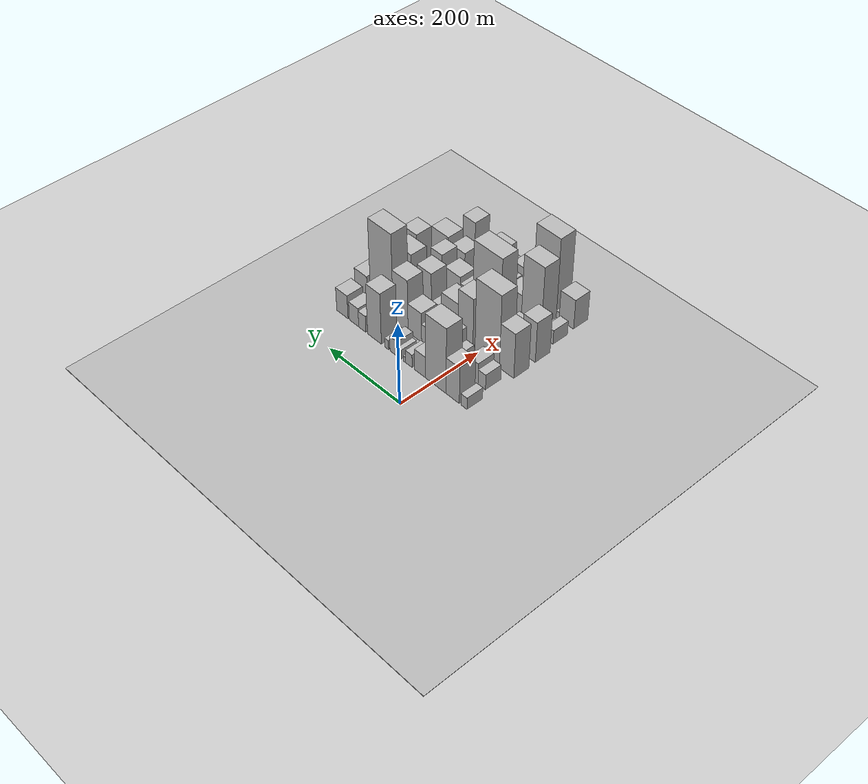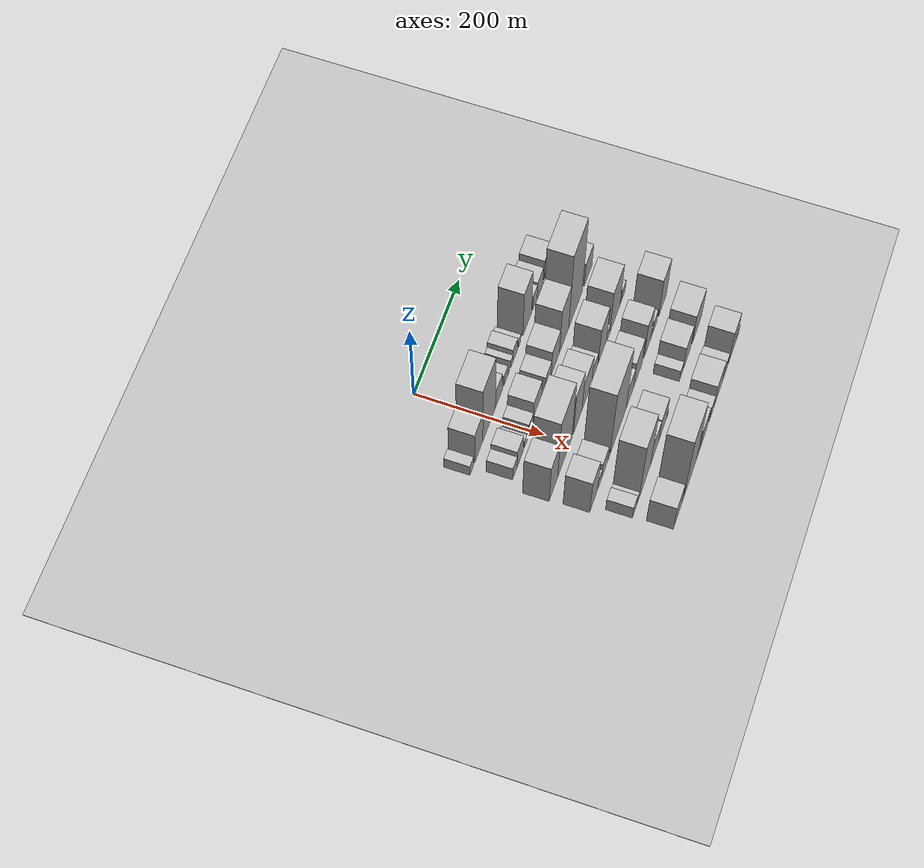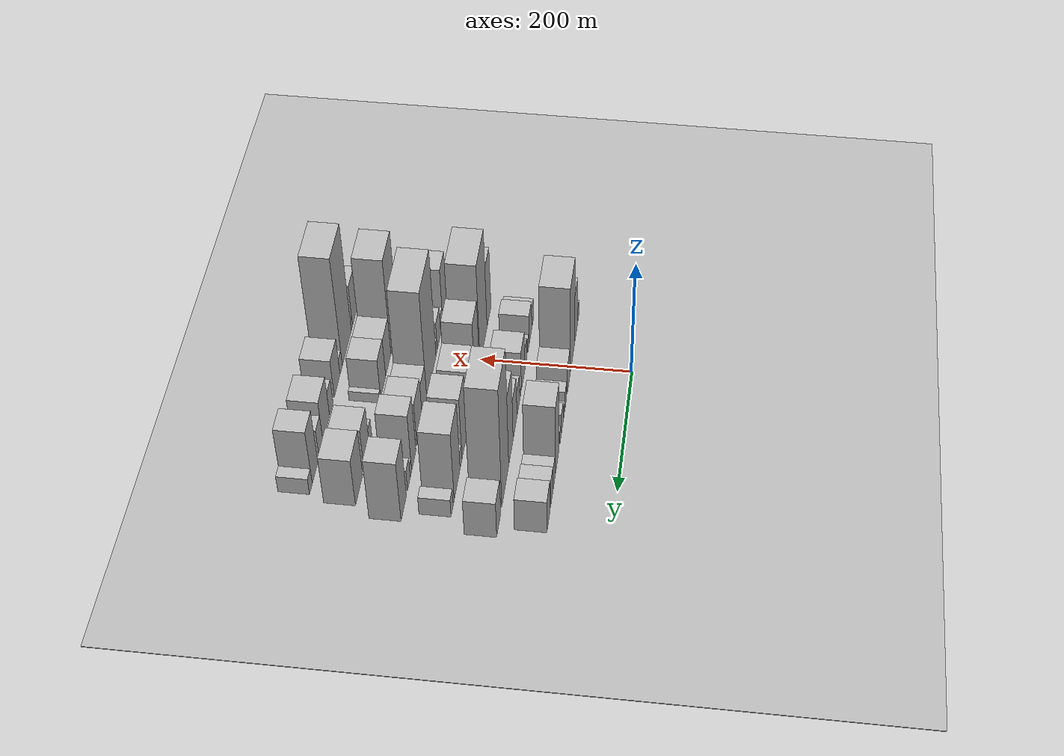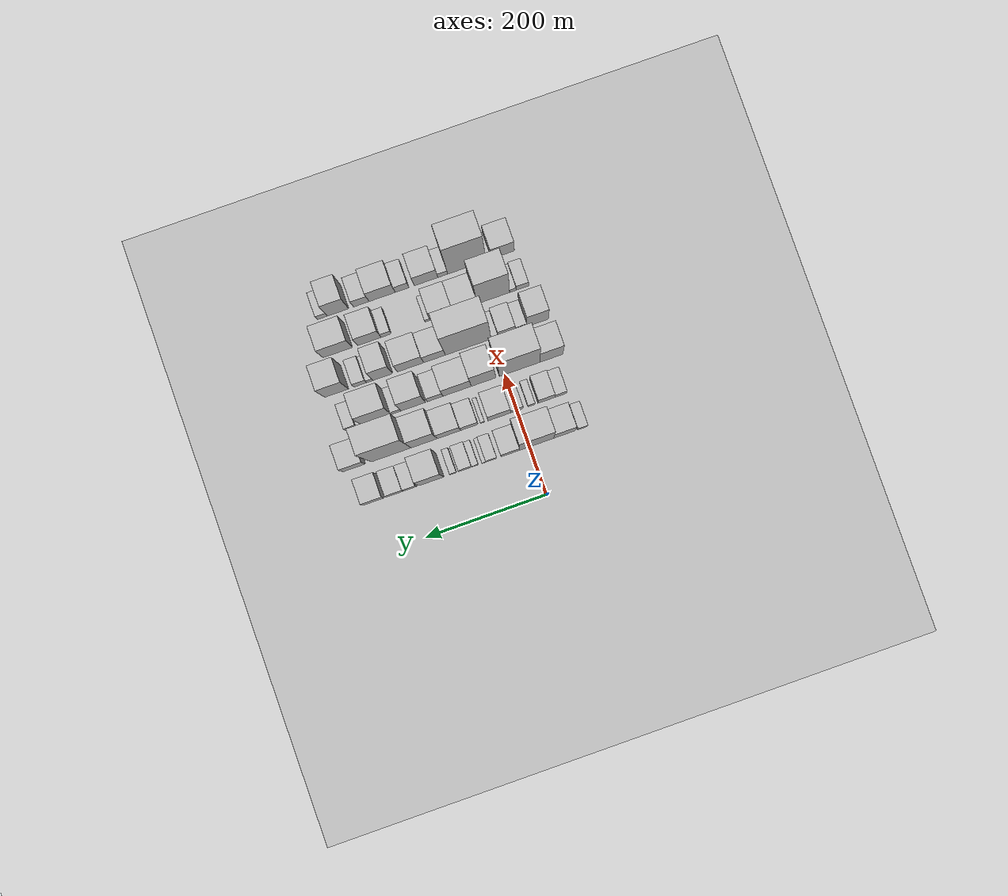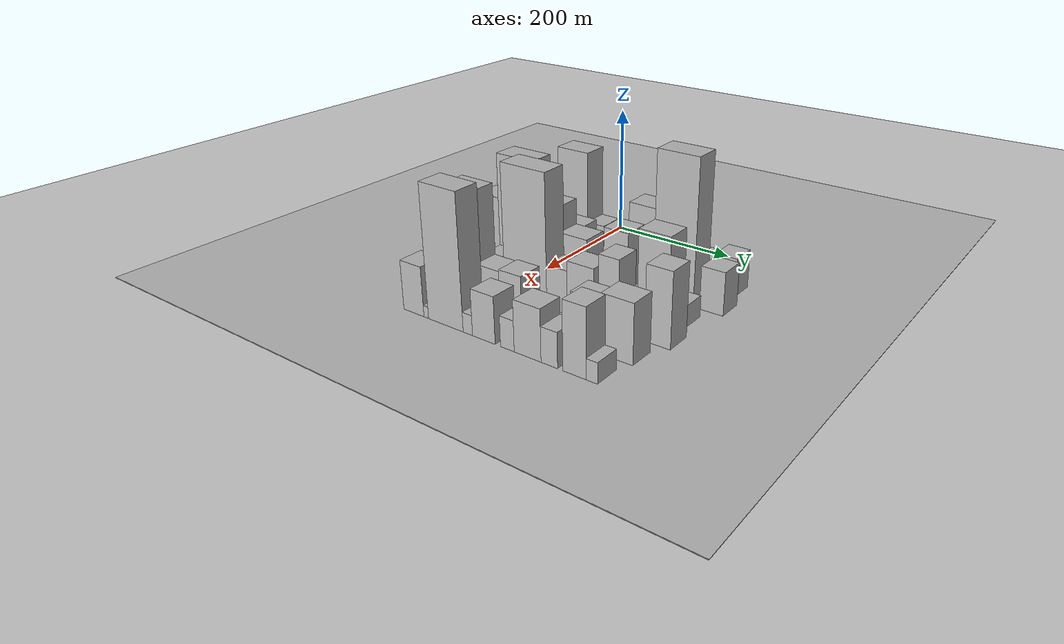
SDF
<sdf version="1.6">
 <world name="default">
  <include><name>ground_plane_1</name><uri>model://HANNAS_ground_plane</uri></include>
  <include>
   <name>ground_plane_2</name>
   <uri>model://HANNAS_ground_plane</uri>
   <pose>100 0 0  0 0 0</pose>
  </include>
  <model name="building_23">
   <static>1</static>
   <pose>100.0000 -86.9276 0 0.000000 0.000000 0.000000</pose>
   <link name="link">
    <pose>0 0 15.00 0 0 0</pose>
    <collision name="collision"><geometry><box><size>40.0000 16.5854 30.0000</size></box></geometry></collision>
    <visual name="visual">
     <cast_shadows>0</cast_shadows>
     <geometry><box><size>40.0000 16.5854 30.0000</size></box></geometry>
     <material>
      <script>
       <uri>model://HANNAS_wall/materials/scripts</uri>
       <uri>model://HANNAS_wall/materials/textures</uri>
       <name>vrc/HANNAS_wall</name>
      </script>
     </material>
    </visual>
   </link>
  </model>
  <model name="building_24">
   <static>1</static>
   <pose>100.0000 -56.8699 0 0.000000 0.000000 0.000000</pose>
   <link name="link">
    <pose>0 0 46.50 0 0 0</pose>
    <collision name="collision"><geometry><box><size>40.0000 35.5301 93.0000</size></box></geometry></collision>
    <visual name="visual">
     <cast_shadows>0</cast_shadows>
     <geometry><box><size>40.0000 35.5301 93.0000</size></box></geometry>
     <material>
      <script>
       <uri>model://HANNAS_wall/materials/scripts</uri>
       <uri>model://HANNAS_wall/materials/textures</uri>
       <name>vrc/HANNAS_wall</name>
      </script>
     </material>
    </visual>
   </link>
  </model>
  <model name="building_25">
   <static>1</static>
   <pose>100.0000 -10.9166 0 0.000000 0.000000 0.000000</pose>
   <link name="link">
    <pose>0 0 82.50 0 0 0</pose>
    <collision name="collision"><geometry><box><size>40.0000 56.3764 165.0000</size></box></geometry></collision>
    <visual name="visual">
     <cast_shadows>0</cast_shadows>
     <geometry><box><size>40.0000 56.3764 165.0000</size></box></geometry>
     <material>
      <script>
       <uri>model://HANNAS_wall/materials/scripts</uri>
       <uri>model://HANNAS_wall/materials/textures</uri>
       <name>vrc/HANNAS_wall</name>
      </script>
     </material>
    </visual>
   </link>
  </model>
  <model name="building_26">
   <static>1</static>
   <pose>100.0000 32.5966 0 0.000000 0.000000 0.000000</pose>
   <link name="link">
    <pose>0 0 27.00 0 0 0</pose>
    <collision name="collision"><geometry><box><size>40.0000 30.6500 54.0000</size></box></geometry></collision>
    <visual name="visual">
     <cast_shadows>0</cast_shadows>
     <geometry><box><size>40.0000 30.6500 54.0000</size></box></geometry>
     <material>
      <script>
       <uri>model://HANNAS_wall/materials/scripts</uri>
       <uri>model://HANNAS_wall/materials/textures</uri>
       <name>vrc/HANNAS_wall</name>
      </script>
     </material>
    </visual>
   </link>
  </model>
  <model name="building_27">
   <static>1</static>
   <pose>100.0000 63.9941 0 0.000000 0.000000 0.000000</pose>
   <link name="link">
    <pose>0 0 16.50 0 0 0</pose>
    <collision name="collision"><geometry><box><size>40.0000 18.1451 33.0000</size></box></geometry></collision>
    <visual name="visual">
     <cast_shadows>0</cast_shadows>
     <geometry><box><size>40.0000 18.1451 33.0000</size></box></geometry>
     <material>
      <script>
       <uri>model://HANNAS_wall/materials/scripts</uri>
       <uri>model://HANNAS_wall/materials/textures</uri>
       <name>vrc/HANNAS_wall</name>
      </script>
     </material>
    </visual>
   </link>
  </model>
  <model name="building_28">
   <static>1</static>
   <pose>100.0000 76.3209 0 0.000000 0.000000 0.000000</pose>
   <link name="link">
    <pose>0 0 7.50 0 0 0</pose>
    <collision name="collision"><geometry><box><size>40.0000 6.5086 15.0000</size></box></geometry></collision>
    <visual name="visual">
     <cast_shadows>0</cast_shadows>
     <geometry><box><size>40.0000 6.5086 15.0000</size></box></geometry>
     <material>
      <script>
       <uri>model://HANNAS_wall/materials/scripts</uri>
       <uri>model://HANNAS_wall/materials/textures</uri>
       <name>vrc/HANNAS_wall</name>
      </script>
     </material>
    </visual>
   </link>
  </model>
  <model name="building_29">
   <static>1</static>
   <pose>100.0000 90.9001 0 0.000000 0.000000 0.000000</pose>
   <link name="link">
    <pose>0 0 12.00 0 0 0</pose>
    <collision name="collision"><geometry><box><size>40.0000 10.6498 24.0000</size></box></geometry></collision>
    <visual name="visual">
     <cast_shadows>0</cast_shadows>
     <geometry><box><size>40.0000 10.6498 24.0000</size></box></geometry>
     <material>
      <script>
       <uri>model://HANNAS_wall/materials/scripts</uri>
       <uri>model://HANNAS_wall/materials/textures</uri>
       <name>vrc/HANNAS_wall</name>
      </script>
     </material>
    </visual>
   </link>
  </model>
  <model name="building_30">
   <static>1</static>
   <pose>100.0000 106.9220 0 0.000000 0.000000 0.000000</pose>
   <link name="link">
    <pose>0 0 19.50 0 0 0</pose>
    <collision name="collision"><geometry><box><size>40.0000 21.3939 39.0000</size></box></geometry></collision>
    <visual name="visual">
     <cast_shadows>0</cast_shadows>
     <geometry><box><size>40.0000 21.3939 39.0000</size></box></geometry>
     <material>
      <script>
       <uri>model://HANNAS_wall/materials/scripts</uri>
       <uri>model://HANNAS_wall/materials/textures</uri>
       <name>vrc/HANNAS_wall</name>
      </script>
     </material>
    </visual>
   </link>
  </model>
  <model name="building_31">
   <static>1</static>
   <pose>100.0000 127.0313 0 0.000000 0.000000 0.000000</pose>
   <link name="link">
    <pose>0 0 12.00 0 0 0</pose>
    <collision name="collision"><geometry><box><size>40.0000 10.8247 24.0000</size></box></geometry></collision>
    <visual name="visual">
     <cast_shadows>0</cast_shadows>
     <geometry><box><size>40.0000 10.8247 24.0000</size></box></geometry>
     <material>
      <script>
       <uri>model://HANNAS_wall/materials/scripts</uri>
       <uri>model://HANNAS_wall/materials/textures</uri>
       <name>vrc/HANNAS_wall</name>
      </script>
     </material>
    </visual>
   </link>
  </model>
  <model name="building_32">
   <static>1</static>
   <pose>100.0000 162.4941 0 0.000000 0.000000 0.000000</pose>
   <link name="link">
    <pose>0 0 64.50 0 0 0</pose>
    <collision name="collision"><geometry><box><size>40.0000 40.1008 129.0000</size></box></geometry></collision>
    <visual name="visual">
     <cast_shadows>0</cast_shadows>
     <geometry><box><size>40.0000 40.1008 129.0000</size></box></geometry>
     <material>
      <script>
       <uri>model://HANNAS_wall/materials/scripts</uri>
       <uri>model://HANNAS_wall/materials/textures</uri>
       <name>vrc/HANNAS_wall</name>
      </script>
     </material>
    </visual>
   </link>
  </model>
  <model name="building_33">
   <static>1</static>
   <pose>100.0000 198.1271 0 0.000000 0.000000 0.000000</pose>
   <link name="link">
    <pose>0 0 21.00 0 0 0</pose>
    <collision name="collision"><geometry><box><size>40.0000 21.1651 42.0000</size></box></geometry></collision>
    <visual name="visual">
     <cast_shadows>0</cast_shadows>
     <geometry><box><size>40.0000 21.1651 42.0000</size></box></geometry>
     <material>
      <script>
       <uri>model://HANNAS_wall/materials/scripts</uri>
       <uri>model://HANNAS_wall/materials/textures</uri>
       <name>vrc/HANNAS_wall</name>
      </script>
     </material>
    </visual>
   </link>
  </model>
  <model name="building_34">
   <static>1</static>
   <pose>100.0000 222.5470 0 0.000000 0.000000 0.000000</pose>
   <link name="link">
    <pose>0 0 24.00 0 0 0</pose>
    <collision name="collision"><geometry><box><size>40.0000 27.6747 48.0000</size></box></geometry></collision>
    <visual name="visual">
     <cast_shadows>0</cast_shadows>
     <geometry><box><size>40.0000 27.6747 48.0000</size></box></geometry>
     <material>
      <script>
       <uri>model://HANNAS_wall/materials/scripts</uri>
       <uri>model://HANNAS_wall/materials/textures</uri>
       <name>vrc/HANNAS_wall</name>
      </script>
     </material>
    </visual>
   </link>
  </model>
  <model name="building_35">
   <static>1</static>
   <pose>100.0000 257.3368 0 0.000000 0.000000 0.000000</pose>
   <link name="link">
    <pose>0 0 30.00 0 0 0</pose>
    <collision name="collision"><geometry><box><size>40.0000 33.9049 60.0000</size></box></geometry></collision>
    <visual name="visual">
     <cast_shadows>0</cast_shadows>
     <geometry><box><size>40.0000 33.9049 60.0000</size></box></geometry>
     <material>
      <script>
       <uri>model://HANNAS_wall/materials/scripts</uri>
       <uri>model://HANNAS_wall/materials/textures</uri>
       <name>vrc/HANNAS_wall</name>
      </script>
     </material>
    </visual>
   </link>
  </model>
  <model name="building_78">
   <static>1</static>
   <pose>160.0000 -72.0281 0 0.000000 0.000000 0.000000</pose>
   <link name="link">
    <pose>0 0 19.50 0 0 0</pose>
    <collision name="collision"><geometry><box><size>40.0000 20.0015 39.0000</size></box></geometry></collision>
    <visual name="visual">
     <cast_shadows>0</cast_shadows>
     <geometry><box><size>40.0000 20.0015 39.0000</size></box></geometry>
     <material>
      <script>
       <uri>model://HANNAS_wall/materials/scripts</uri>
       <uri>model://HANNAS_wall/materials/textures</uri>
       <name>vrc/HANNAS_wall</name>
      </script>
     </material>
    </visual>
   </link>
  </model>
  <model name="building_79">
   <static>1</static>
   <pose>160.0000 -48.2719 0 0.000000 0.000000 0.000000</pose>
   <link name="link">
    <pose>0 0 27.00 0 0 0</pose>
    <collision name="collision"><geometry><box><size>40.0000 27.5109 54.0000</size></box></geometry></collision>
    <visual name="visual">
     <cast_shadows>0</cast_shadows>
     <geometry><box><size>40.0000 27.5109 54.0000</size></box></geometry>
     <material>
      <script>
       <uri>model://HANNAS_wall/materials/scripts</uri>
       <uri>model://HANNAS_wall/materials/textures</uri>
       <name>vrc/HANNAS_wall</name>
      </script>
     </material>
    </visual>
   </link>
  </model>
  <model name="building_80">
   <static>1</static>
   <pose>160.0000 -23.6140 0 0.000000 0.000000 0.000000</pose>
   <link name="link">
    <pose>0 0 12.00 0 0 0</pose>
    <collision name="collision"><geometry><box><size>40.0000 11.8049 24.0000</size></box></geometry></collision>
    <visual name="visual">
     <cast_shadows>0</cast_shadows>
     <geometry><box><size>40.0000 11.8049 24.0000</size></box></geometry>
     <material>
      <script>
       <uri>model://HANNAS_wall/materials/scripts</uri>
       <uri>model://HANNAS_wall/materials/textures</uri>
       <name>vrc/HANNAS_wall</name>
      </script>
     </material>
    </visual>
   </link>
  </model>
  <model name="building_81">
   <static>1</static>
   <pose>160.0000 0.6142 0 0.000000 0.000000 0.000000</pose>
   <link name="link">
    <pose>0 0 19.50 0 0 0</pose>
    <collision name="collision"><geometry><box><size>40.0000 20.6513 39.0000</size></box></geometry></collision>
    <visual name="visual">
     <cast_shadows>0</cast_shadows>
     <geometry><box><size>40.0000 20.6513 39.0000</size></box></geometry>
     <material>
      <script>
       <uri>model://HANNAS_wall/materials/scripts</uri>
       <uri>model://HANNAS_wall/materials/textures</uri>
       <name>vrc/HANNAS_wall</name>
      </script>
     </material>
    </visual>
   </link>
  </model>
  <model name="building_82">
   <static>1</static>
   <pose>160.0000 29.6534 0 0.000000 0.000000 0.000000</pose>
   <link name="link">
    <pose>0 0 36.00 0 0 0</pose>
    <collision name="collision"><geometry><box><size>40.0000 37.4271 72.0000</size></box></geometry></collision>
    <visual name="visual">
     <cast_shadows>0</cast_shadows>
     <geometry><box><size>40.0000 37.4271 72.0000</size></box></geometry>
     <material>
      <script>
       <uri>model://HANNAS_wall/materials/scripts</uri>
       <uri>model://HANNAS_wall/materials/textures</uri>
       <name>vrc/HANNAS_wall</name>
      </script>
     </material>
    </visual>
   </link>
  </model>
  <model name="building_83">
   <static>1</static>
   <pose>160.0000 57.7020 0 0.000000 0.000000 0.000000</pose>
   <link name="link">
    <pose>0 0 7.50 0 0 0</pose>
    <collision name="collision"><geometry><box><size>40.0000 6.6702 15.0000</size></box></geometry></collision>
    <visual name="visual">
     <cast_shadows>0</cast_shadows>
     <geometry><box><size>40.0000 6.6702 15.0000</size></box></geometry>
     <material>
      <script>
       <uri>model://HANNAS_wall/materials/scripts</uri>
       <uri>model://HANNAS_wall/materials/textures</uri>
       <name>vrc/HANNAS_wall</name>
      </script>
     </material>
    </visual>
   </link>
  </model>
  <model name="building_84">
   <static>1</static>
   <pose>160.0000 79.4166 0 0.000000 0.000000 0.000000</pose>
   <link name="link">
    <pose>0 0 24.00 0 0 0</pose>
    <collision name="collision"><geometry><box><size>40.0000 28.7589 48.0000</size></box></geometry></collision>
    <visual name="visual">
     <cast_shadows>0</cast_shadows>
     <geometry><box><size>40.0000 28.7589 48.0000</size></box></geometry>
     <material>
      <script>
       <uri>model://HANNAS_wall/materials/scripts</uri>
       <uri>model://HANNAS_wall/materials/textures</uri>
       <name>vrc/HANNAS_wall</name>
      </script>
     </material>
    </visual>
   </link>
  </model>
  <model name="building_85">
   <static>1</static>
   <pose>160.0000 113.1522 0 0.000000 0.000000 0.000000</pose>
   <link name="link">
    <pose>0 0 37.50 0 0 0</pose>
    <collision name="collision"><geometry><box><size>40.0000 38.7123 75.0000</size></box></geometry></collision>
    <visual name="visual">
     <cast_shadows>0</cast_shadows>
     <geometry><box><size>40.0000 38.7123 75.0000</size></box></geometry>
     <material>
      <script>
       <uri>model://HANNAS_wall/materials/scripts</uri>
       <uri>model://HANNAS_wall/materials/textures</uri>
       <name>vrc/HANNAS_wall</name>
      </script>
     </material>
    </visual>
   </link>
  </model>
  <model name="building_86">
   <static>1</static>
   <pose>160.0000 154.0994 0 0.000000 0.000000 0.000000</pose>
   <link name="link">
    <pose>0 0 66.00 0 0 0</pose>
    <collision name="collision"><geometry><box><size>40.0000 43.1823 132.0000</size></box></geometry></collision>
    <visual name="visual">
     <cast_shadows>0</cast_shadows>
     <geometry><box><size>40.0000 43.1823 132.0000</size></box></geometry>
     <material>
      <script>
       <uri>model://HANNAS_wall/materials/scripts</uri>
       <uri>model://HANNAS_wall/materials/textures</uri>
       <name>vrc/HANNAS_wall</name>
      </script>
     </material>
    </visual>
   </link>
  </model>
  <model name="building_87">
   <static>1</static>
   <pose>160.0000 208.5532 0 0.000000 0.000000 0.000000</pose>
   <link name="link">
    <pose>0 0 109.50 0 0 0</pose>
    <collision name="collision"><geometry><box><size>40.0000 65.7253 219.0000</size></box></geometry></collision>
    <visual name="visual">
     <cast_shadows>0</cast_shadows>
     <geometry><box><size>40.0000 65.7253 219.0000</size></box></geometry>
     <material>
      <script>
       <uri>model://HANNAS_wall/materials/scripts</uri>
       <uri>model://HANNAS_wall/materials/textures</uri>
       <name>vrc/HANNAS_wall</name>
      </script>
     </material>
    </visual>
   </link>
  </model>
  <model name="building_88">
   <static>1</static>
   <pose>160.0000 269.8236 0 0.000000 0.000000 0.000000</pose>
   <link name="link">
    <pose>0 0 33.00 0 0 0</pose>
    <collision name="collision"><geometry><box><size>40.0000 36.8154 66.0000</size></box></geometry></collision>
    <visual name="visual">
     <cast_shadows>0</cast_shadows>
     <geometry><box><size>40.0000 36.8154 66.0000</size></box></geometry>
     <material>
      <script>
       <uri>model://HANNAS_wall/materials/scripts</uri>
       <uri>model://HANNAS_wall/materials/textures</uri>
       <name>vrc/HANNAS_wall</name>
      </script>
     </material>
    </visual>
   </link>
  </model>
  <model name="building_133">
   <static>1</static>
   <pose>220.0000 -77.3701 0 0.000000 0.000000 0.000000</pose>
   <link name="link">
    <pose>0 0 57.00 0 0 0</pose>
    <collision name="collision"><geometry><box><size>40.0000 38.3633 114.0000</size></box></geometry></collision>
    <visual name="visual">
     <cast_shadows>0</cast_shadows>
     <geometry><box><size>40.0000 38.3633 114.0000</size></box></geometry>
     <material>
      <script>
       <uri>model://HANNAS_wall/materials/scripts</uri>
       <uri>model://HANNAS_wall/materials/textures</uri>
       <name>vrc/HANNAS_wall</name>
      </script>
     </material>
    </visual>
   </link>
  </model>
  <model name="building_134">
   <static>1</static>
   <pose>220.0000 -24.8652 0 0.000000 0.000000 0.000000</pose>
   <link name="link">
    <pose>0 0 91.50 0 0 0</pose>
    <collision name="collision"><geometry><box><size>40.0000 66.6464 183.0000</size></box></geometry></collision>
    <visual name="visual">
     <cast_shadows>0</cast_shadows>
     <geometry><box><size>40.0000 66.6464 183.0000</size></box></geometry>
     <material>
      <script>
       <uri>model://HANNAS_wall/materials/scripts</uri>
       <uri>model://HANNAS_wall/materials/textures</uri>
       <name>vrc/HANNAS_wall</name>
      </script>
     </material>
    </visual>
   </link>
  </model>
  <model name="building_135">
   <static>1</static>
   <pose>220.0000 34.8179 0 0.000000 0.000000 0.000000</pose>
   <link name="link">
    <pose>0 0 63.00 0 0 0</pose>
    <collision name="collision"><geometry><box><size>40.0000 40.7200 126.0000</size></box></geometry></collision>
    <visual name="visual">
     <cast_shadows>0</cast_shadows>
     <geometry><box><size>40.0000 40.7200 126.0000</size></box></geometry>
     <material>
      <script>
       <uri>model://HANNAS_wall/materials/scripts</uri>
       <uri>model://HANNAS_wall/materials/textures</uri>
       <name>vrc/HANNAS_wall</name>
      </script>
     </material>
    </visual>
   </link>
  </model>
  <model name="building_136">
   <static>1</static>
   <pose>220.0000 78.6794 0 0.000000 0.000000 0.000000</pose>
   <link name="link">
    <pose>0 0 43.50 0 0 0</pose>
    <collision name="collision"><geometry><box><size>40.0000 47.0030 87.0000</size></box></geometry></collision>
    <visual name="visual">
     <cast_shadows>0</cast_shadows>
     <geometry><box><size>40.0000 47.0030 87.0000</size></box></geometry>
     <material>
      <script>
       <uri>model://HANNAS_wall/materials/scripts</uri>
       <uri>model://HANNAS_wall/materials/textures</uri>
       <name>vrc/HANNAS_wall</name>
      </script>
     </material>
    </visual>
   </link>
  </model>
  <model name="building_137">
   <static>1</static>
   <pose>220.0000 115.1416 0 0.000000 0.000000 0.000000</pose>
   <link name="link">
    <pose>0 0 24.00 0 0 0</pose>
    <collision name="collision"><geometry><box><size>40.0000 25.9214 48.0000</size></box></geometry></collision>
    <visual name="visual">
     <cast_shadows>0</cast_shadows>
     <geometry><box><size>40.0000 25.9214 48.0000</size></box></geometry>
     <material>
      <script>
       <uri>model://HANNAS_wall/materials/scripts</uri>
       <uri>model://HANNAS_wall/materials/textures</uri>
       <name>vrc/HANNAS_wall</name>
      </script>
     </material>
    </visual>
   </link>
  </model>
  <model name="building_138">
   <static>1</static>
   <pose>220.0000 151.1957 0 0.000000 0.000000 0.000000</pose>
   <link name="link">
    <pose>0 0 57.00 0 0 0</pose>
    <collision name="collision"><geometry><box><size>40.0000 40.1869 114.0000</size></box></geometry></collision>
    <visual name="visual">
     <cast_shadows>0</cast_shadows>
     <geometry><box><size>40.0000 40.1869 114.0000</size></box></geometry>
     <material>
      <script>
       <uri>model://HANNAS_wall/materials/scripts</uri>
       <uri>model://HANNAS_wall/materials/textures</uri>
       <name>vrc/HANNAS_wall</name>
      </script>
     </material>
    </visual>
   </link>
  </model>
  <model name="building_139">
   <static>1</static>
   <pose>220.0000 179.4685 0 0.000000 0.000000 0.000000</pose>
   <link name="link">
    <pose>0 0 15.00 0 0 0</pose>
    <collision name="collision"><geometry><box><size>40.0000 16.3586 30.0000</size></box></geometry></collision>
    <visual name="visual">
     <cast_shadows>0</cast_shadows>
     <geometry><box><size>40.0000 16.3586 30.0000</size></box></geometry>
     <material>
      <script>
       <uri>model://HANNAS_wall/materials/scripts</uri>
       <uri>model://HANNAS_wall/materials/textures</uri>
       <name>vrc/HANNAS_wall</name>
      </script>
     </material>
    </visual>
   </link>
  </model>
  <model name="building_140">
   <static>1</static>
   <pose>220.0000 212.5017 0 0.000000 0.000000 0.000000</pose>
   <link name="link">
    <pose>0 0 63.00 0 0 0</pose>
    <collision name="collision"><geometry><box><size>40.0000 49.7079 126.0000</size></box></geometry></collision>
    <visual name="visual">
     <cast_shadows>0</cast_shadows>
     <geometry><box><size>40.0000 49.7079 126.0000</size></box></geometry>
     <material>
      <script>
       <uri>model://HANNAS_wall/materials/scripts</uri>
       <uri>model://HANNAS_wall/materials/textures</uri>
       <name>vrc/HANNAS_wall</name>
      </script>
     </material>
    </visual>
   </link>
  </model>
  <model name="building_141">
   <static>1</static>
   <pose>220.0000 241.3922 0 0.000000 0.000000 0.000000</pose>
   <link name="link">
    <pose>0 0 9.00 0 0 0</pose>
    <collision name="collision"><geometry><box><size>40.0000 8.0732 18.0000</size></box></geometry></collision>
    <visual name="visual">
     <cast_shadows>0</cast_shadows>
     <geometry><box><size>40.0000 8.0732 18.0000</size></box></geometry>
     <material>
      <script>
       <uri>model://HANNAS_wall/materials/scripts</uri>
       <uri>model://HANNAS_wall/materials/textures</uri>
       <name>vrc/HANNAS_wall</name>
      </script>
     </material>
    </visual>
   </link>
  </model>
  <model name="building_142">
   <static>1</static>
   <pose>220.0000 254.5395 0 0.000000 0.000000 0.000000</pose>
   <link name="link">
    <pose>0 0 16.50 0 0 0</pose>
    <collision name="collision"><geometry><box><size>40.0000 18.2215 33.0000</size></box></geometry></collision>
    <visual name="visual">
     <cast_shadows>0</cast_shadows>
     <geometry><box><size>40.0000 18.2215 33.0000</size></box></geometry>
     <material>
      <script>
       <uri>model://HANNAS_wall/materials/scripts</uri>
       <uri>model://HANNAS_wall/materials/textures</uri>
       <name>vrc/HANNAS_wall</name>
      </script>
     </material>
    </visual>
   </link>
  </model>
  <model name="building_186">
   <static>1</static>
   <pose>280.0000 -76.0118 0 0.000000 0.000000 0.000000</pose>
   <link name="link">
    <pose>0 0 51.00 0 0 0</pose>
    <collision name="collision"><geometry><box><size>40.0000 35.7451 102.0000</size></box></geometry></collision>
    <visual name="visual">
     <cast_shadows>0</cast_shadows>
     <geometry><box><size>40.0000 35.7451 102.0000</size></box></geometry>
     <material>
      <script>
       <uri>model://HANNAS_wall/materials/scripts</uri>
       <uri>model://HANNAS_wall/materials/textures</uri>
       <name>vrc/HANNAS_wall</name>
      </script>
     </material>
    </visual>
   </link>
  </model>
  <model name="building_187">
   <static>1</static>
   <pose>280.0000 -48.7218 0 0.000000 0.000000 0.000000</pose>
   <link name="link">
    <pose>0 0 16.50 0 0 0</pose>
    <collision name="collision"><geometry><box><size>40.0000 18.8349 33.0000</size></box></geometry></collision>
    <visual name="visual">
     <cast_shadows>0</cast_shadows>
     <geometry><box><size>40.0000 18.8349 33.0000</size></box></geometry>
     <material>
      <script>
       <uri>model://HANNAS_wall/materials/scripts</uri>
       <uri>model://HANNAS_wall/materials/textures</uri>
       <name>vrc/HANNAS_wall</name>
      </script>
     </material>
    </visual>
   </link>
  </model>
  <model name="building_188">
   <static>1</static>
   <pose>280.0000 -24.7199 0 0.000000 0.000000 0.000000</pose>
   <link name="link">
    <pose>0 0 25.50 0 0 0</pose>
    <collision name="collision"><geometry><box><size>40.0000 29.1689 51.0000</size></box></geometry></collision>
    <visual name="visual">
     <cast_shadows>0</cast_shadows>
     <geometry><box><size>40.0000 29.1689 51.0000</size></box></geometry>
     <material>
      <script>
       <uri>model://HANNAS_wall/materials/scripts</uri>
       <uri>model://HANNAS_wall/materials/textures</uri>
       <name>vrc/HANNAS_wall</name>
      </script>
     </material>
    </visual>
   </link>
  </model>
  <model name="building_189">
   <static>1</static>
   <pose>280.0000 -4.4819 0 0.000000 0.000000 0.000000</pose>
   <link name="link">
    <pose>0 0 12.00 0 0 0</pose>
    <collision name="collision"><geometry><box><size>40.0000 11.3071 24.0000</size></box></geometry></collision>
    <visual name="visual">
     <cast_shadows>0</cast_shadows>
     <geometry><box><size>40.0000 11.3071 24.0000</size></box></geometry>
     <material>
      <script>
       <uri>model://HANNAS_wall/materials/scripts</uri>
       <uri>model://HANNAS_wall/materials/textures</uri>
       <name>vrc/HANNAS_wall</name>
      </script>
     </material>
    </visual>
   </link>
  </model>
  <model name="building_190">
   <static>1</static>
   <pose>280.0000 39.2995 0 0.000000 0.000000 0.000000</pose>
   <link name="link">
    <pose>0 0 99.00 0 0 0</pose>
    <collision name="collision"><geometry><box><size>40.0000 76.2558 198.0000</size></box></geometry></collision>
    <visual name="visual">
     <cast_shadows>0</cast_shadows>
     <geometry><box><size>40.0000 76.2558 198.0000</size></box></geometry>
     <material>
      <script>
       <uri>model://HANNAS_wall/materials/scripts</uri>
       <uri>model://HANNAS_wall/materials/textures</uri>
       <name>vrc/HANNAS_wall</name>
      </script>
     </material>
    </visual>
   </link>
  </model>
  <model name="building_191">
   <static>1</static>
   <pose>280.0000 95.2599 0 0.000000 0.000000 0.000000</pose>
   <link name="link">
    <pose>0 0 33.00 0 0 0</pose>
    <collision name="collision"><geometry><box><size>40.0000 35.6650 66.0000</size></box></geometry></collision>
    <visual name="visual">
     <cast_shadows>0</cast_shadows>
     <geometry><box><size>40.0000 35.6650 66.0000</size></box></geometry>
     <material>
      <script>
       <uri>model://HANNAS_wall/materials/scripts</uri>
       <uri>model://HANNAS_wall/materials/textures</uri>
       <name>vrc/HANNAS_wall</name>
      </script>
     </material>
    </visual>
   </link>
  </model>
  <model name="building_192">
   <static>1</static>
   <pose>280.0000 134.8960 0 0.000000 0.000000 0.000000</pose>
   <link name="link">
    <pose>0 0 40.50 0 0 0</pose>
    <collision name="collision"><geometry><box><size>40.0000 43.6071 81.0000</size></box></geometry></collision>
    <visual name="visual">
     <cast_shadows>0</cast_shadows>
     <geometry><box><size>40.0000 43.6071 81.0000</size></box></geometry>
     <material>
      <script>
       <uri>model://HANNAS_wall/materials/scripts</uri>
       <uri>model://HANNAS_wall/materials/textures</uri>
       <name>vrc/HANNAS_wall</name>
      </script>
     </material>
    </visual>
   </link>
  </model>
  <model name="building_193">
   <static>1</static>
   <pose>280.0000 180.9466 0 0.000000 0.000000 0.000000</pose>
   <link name="link">
    <pose>0 0 52.50 0 0 0</pose>
    <collision name="collision"><geometry><box><size>40.0000 32.4943 105.0000</size></box></geometry></collision>
    <visual name="visual">
     <cast_shadows>0</cast_shadows>
     <geometry><box><size>40.0000 32.4943 105.0000</size></box></geometry>
     <material>
      <script>
       <uri>model://HANNAS_wall/materials/scripts</uri>
       <uri>model://HANNAS_wall/materials/textures</uri>
       <name>vrc/HANNAS_wall</name>
      </script>
     </material>
    </visual>
   </link>
  </model>
  <model name="building_194">
   <static>1</static>
   <pose>280.0000 202.6793 0 0.000000 0.000000 0.000000</pose>
   <link name="link">
    <pose>0 0 12.00 0 0 0</pose>
    <collision name="collision"><geometry><box><size>40.0000 10.9711 24.0000</size></box></geometry></collision>
    <visual name="visual">
     <cast_shadows>0</cast_shadows>
     <geometry><box><size>40.0000 10.9711 24.0000</size></box></geometry>
     <material>
      <script>
       <uri>model://HANNAS_wall/materials/scripts</uri>
       <uri>model://HANNAS_wall/materials/textures</uri>
       <name>vrc/HANNAS_wall</name>
      </script>
     </material>
    </visual>
   </link>
  </model>
  <model name="building_195">
   <static>1</static>
   <pose>280.0000 218.5935 0 0.000000 0.000000 0.000000</pose>
   <link name="link">
    <pose>0 0 19.50 0 0 0</pose>
    <collision name="collision"><geometry><box><size>40.0000 20.8574 39.0000</size></box></geometry></collision>
    <visual name="visual">
     <cast_shadows>0</cast_shadows>
     <geometry><box><size>40.0000 20.8574 39.0000</size></box></geometry>
     <material>
      <script>
       <uri>model://HANNAS_wall/materials/scripts</uri>
       <uri>model://HANNAS_wall/materials/textures</uri>
       <name>vrc/HANNAS_wall</name>
      </script>
     </material>
    </visual>
   </link>
  </model>
  <model name="building_196">
   <static>1</static>
   <pose>280.0000 257.6896 0 0.000000 0.000000 0.000000</pose>
   <link name="link">
    <pose>0 0 55.50 0 0 0</pose>
    <collision name="collision"><geometry><box><size>40.0000 39.3348 111.0000</size></box></geometry></collision>
    <visual name="visual">
     <cast_shadows>0</cast_shadows>
     <geometry><box><size>40.0000 39.3348 111.0000</size></box></geometry>
     <material>
      <script>
       <uri>model://HANNAS_wall/materials/scripts</uri>
       <uri>model://HANNAS_wall/materials/textures</uri>
       <name>vrc/HANNAS_wall</name>
      </script>
     </material>
    </visual>
   </link>
  </model>
  <model name="building_238">
   <static>1</static>
   <pose>340.0000 -71.9362 0 0.000000 0.000000 0.000000</pose>
   <link name="link">
    <pose>0 0 18.00 0 0 0</pose>
    <collision name="collision"><geometry><box><size>40.0000 20.4806 36.0000</size></box></geometry></collision>
    <visual name="visual">
     <cast_shadows>0</cast_shadows>
     <geometry><box><size>40.0000 20.4806 36.0000</size></box></geometry>
     <material>
      <script>
       <uri>model://HANNAS_wall/materials/scripts</uri>
       <uri>model://HANNAS_wall/materials/textures</uri>
       <name>vrc/HANNAS_wall</name>
      </script>
     </material>
    </visual>
   </link>
  </model>
  <model name="building_239">
   <static>1</static>
   <pose>340.0000 -56.0916 0 0.000000 0.000000 0.000000</pose>
   <link name="link">
    <pose>0 0 12.00 0 0 0</pose>
    <collision name="collision"><geometry><box><size>40.0000 11.2086 24.0000</size></box></geometry></collision>
    <visual name="visual">
     <cast_shadows>0</cast_shadows>
     <geometry><box><size>40.0000 11.2086 24.0000</size></box></geometry>
     <material>
      <script>
       <uri>model://HANNAS_wall/materials/scripts</uri>
       <uri>model://HANNAS_wall/materials/textures</uri>
       <name>vrc/HANNAS_wall</name>
      </script>
     </material>
    </visual>
   </link>
  </model>
  <model name="building_240">
   <static>1</static>
   <pose>340.0000 -23.3793 0 0.000000 0.000000 0.000000</pose>
   <link name="link">
    <pose>0 0 87.00 0 0 0</pose>
    <collision name="collision"><geometry><box><size>40.0000 54.2160 174.0000</size></box></geometry></collision>
    <visual name="visual">
     <cast_shadows>0</cast_shadows>
     <geometry><box><size>40.0000 54.2160 174.0000</size></box></geometry>
     <material>
      <script>
       <uri>model://HANNAS_wall/materials/scripts</uri>
       <uri>model://HANNAS_wall/materials/textures</uri>
       <name>vrc/HANNAS_wall</name>
      </script>
     </material>
    </visual>
   </link>
  </model>
  <model name="building_241">
   <static>1</static>
   <pose>340.0000 23.9765 0 0.000000 0.000000 0.000000</pose>
   <link name="link">
    <pose>0 0 34.50 0 0 0</pose>
    <collision name="collision"><geometry><box><size>40.0000 40.4954 69.0000</size></box></geometry></collision>
    <visual name="visual">
     <cast_shadows>0</cast_shadows>
     <geometry><box><size>40.0000 40.4954 69.0000</size></box></geometry>
     <material>
      <script>
       <uri>model://HANNAS_wall/materials/scripts</uri>
       <uri>model://HANNAS_wall/materials/textures</uri>
       <name>vrc/HANNAS_wall</name>
      </script>
     </material>
    </visual>
   </link>
  </model>
  <model name="building_242">
   <static>1</static>
   <pose>340.0000 63.0930 0 0.000000 0.000000 0.000000</pose>
   <link name="link">
    <pose>0 0 36.00 0 0 0</pose>
    <collision name="collision"><geometry><box><size>40.0000 37.7378 72.0000</size></box></geometry></collision>
    <visual name="visual">
     <cast_shadows>0</cast_shadows>
     <geometry><box><size>40.0000 37.7378 72.0000</size></box></geometry>
     <material>
      <script>
       <uri>model://HANNAS_wall/materials/scripts</uri>
       <uri>model://HANNAS_wall/materials/textures</uri>
       <name>vrc/HANNAS_wall</name>
      </script>
     </material>
    </visual>
   </link>
  </model>
  <model name="building_243">
   <static>1</static>
   <pose>340.0000 86.1375 0 0.000000 0.000000 0.000000</pose>
   <link name="link">
    <pose>0 0 9.00 0 0 0</pose>
    <collision name="collision"><geometry><box><size>40.0000 8.3512 18.0000</size></box></geometry></collision>
    <visual name="visual">
     <cast_shadows>0</cast_shadows>
     <geometry><box><size>40.0000 8.3512 18.0000</size></box></geometry>
     <material>
      <script>
       <uri>model://HANNAS_wall/materials/scripts</uri>
       <uri>model://HANNAS_wall/materials/textures</uri>
       <name>vrc/HANNAS_wall</name>
      </script>
     </material>
    </visual>
   </link>
  </model>
  <model name="building_244">
   <static>1</static>
   <pose>340.0000 154.7923 0 0.000000 0.000000 0.000000</pose>
   <link name="link">
    <pose>0 0 16.50 0 0 0</pose>
    <collision name="collision"><geometry><box><size>40.0000 16.9861 33.0000</size></box></geometry></collision>
    <visual name="visual">
     <cast_shadows>0</cast_shadows>
     <geometry><box><size>40.0000 16.9861 33.0000</size></box></geometry>
     <material>
      <script>
       <uri>model://HANNAS_wall/materials/scripts</uri>
       <uri>model://HANNAS_wall/materials/textures</uri>
       <name>vrc/HANNAS_wall</name>
      </script>
     </material>
    </visual>
   </link>
  </model>
  <model name="building_245">
   <static>1</static>
   <pose>340.0000 182.6213 0 0.000000 0.000000 0.000000</pose>
   <link name="link">
    <pose>0 0 37.50 0 0 0</pose>
    <collision name="collision"><geometry><box><size>40.0000 38.6718 75.0000</size></box></geometry></collision>
    <visual name="visual">
     <cast_shadows>0</cast_shadows>
     <geometry><box><size>40.0000 38.6718 75.0000</size></box></geometry>
     <material>
      <script>
       <uri>model://HANNAS_wall/materials/scripts</uri>
       <uri>model://HANNAS_wall/materials/textures</uri>
       <name>vrc/HANNAS_wall</name>
      </script>
     </material>
    </visual>
   </link>
  </model>
  <model name="building_246">
   <static>1</static>
   <pose>340.0000 235.3692 0 0.000000 0.000000 0.000000</pose>
   <link name="link">
    <pose>0 0 43.50 0 0 0</pose>
    <collision name="collision"><geometry><box><size>40.0000 48.8240 87.0000</size></box></geometry></collision>
    <visual name="visual">
     <cast_shadows>0</cast_shadows>
     <geometry><box><size>40.0000 48.8240 87.0000</size></box></geometry>
     <material>
      <script>
       <uri>model://HANNAS_wall/materials/scripts</uri>
       <uri>model://HANNAS_wall/materials/textures</uri>
       <name>vrc/HANNAS_wall</name>
      </script>
     </material>
    </visual>
   </link>
  </model>
  <model name="building_290">
   <static>1</static>
   <pose>400.0000 -60.0929 0 0.000000 0.000000 0.000000</pose>
   <link name="link">
    <pose>0 0 37.50 0 0 0</pose>
    <collision name="collision"><geometry><box><size>40.0000 38.7631 75.0000</size></box></geometry></collision>
    <visual name="visual">
     <cast_shadows>0</cast_shadows>
     <geometry><box><size>40.0000 38.7631 75.0000</size></box></geometry>
     <material>
      <script>
       <uri>model://HANNAS_wall/materials/scripts</uri>
       <uri>model://HANNAS_wall/materials/textures</uri>
       <name>vrc/HANNAS_wall</name>
      </script>
     </material>
    </visual>
   </link>
  </model>
  <model name="building_291">
   <static>1</static>
   <pose>400.0000 -36.4374 0 0.000000 0.000000 0.000000</pose>
   <link name="link">
    <pose>0 0 9.00 0 0 0</pose>
    <collision name="collision"><geometry><box><size>40.0000 8.5479 18.0000</size></box></geometry></collision>
    <visual name="visual">
     <cast_shadows>0</cast_shadows>
     <geometry><box><size>40.0000 8.5479 18.0000</size></box></geometry>
     <material>
      <script>
       <uri>model://HANNAS_wall/materials/scripts</uri>
       <uri>model://HANNAS_wall/materials/textures</uri>
       <name>vrc/HANNAS_wall</name>
      </script>
     </material>
    </visual>
   </link>
  </model>
  <model name="building_292">
   <static>1</static>
   <pose>400.0000 -0.3028 0 0.000000 0.000000 0.000000</pose>
   <link name="link">
    <pose>0 0 99.00 0 0 0</pose>
    <collision name="collision"><geometry><box><size>40.0000 63.7213 198.0000</size></box></geometry></collision>
    <visual name="visual">
     <cast_shadows>0</cast_shadows>
     <geometry><box><size>40.0000 63.7213 198.0000</size></box></geometry>
     <material>
      <script>
       <uri>model://HANNAS_wall/materials/scripts</uri>
       <uri>model://HANNAS_wall/materials/textures</uri>
       <name>vrc/HANNAS_wall</name>
      </script>
     </material>
    </visual>
   </link>
  </model>
  <model name="building_293">
   <static>1</static>
   <pose>400.0000 39.8176 0 0.000000 0.000000 0.000000</pose>
   <link name="link">
    <pose>0 0 15.00 0 0 0</pose>
    <collision name="collision"><geometry><box><size>40.0000 16.5195 30.0000</size></box></geometry></collision>
    <visual name="visual">
     <cast_shadows>0</cast_shadows>
     <geometry><box><size>40.0000 16.5195 30.0000</size></box></geometry>
     <material>
      <script>
       <uri>model://HANNAS_wall/materials/scripts</uri>
       <uri>model://HANNAS_wall/materials/textures</uri>
       <name>vrc/HANNAS_wall</name>
      </script>
     </material>
    </visual>
   </link>
  </model>
  <model name="building_294">
   <static>1</static>
   <pose>400.0000 67.6758 0 0.000000 0.000000 0.000000</pose>
   <link name="link">
    <pose>0 0 34.50 0 0 0</pose>
    <collision name="collision"><geometry><box><size>40.0000 39.1969 69.0000</size></box></geometry></collision>
    <visual name="visual">
     <cast_shadows>0</cast_shadows>
     <geometry><box><size>40.0000 39.1969 69.0000</size></box></geometry>
     <material>
      <script>
       <uri>model://HANNAS_wall/materials/scripts</uri>
       <uri>model://HANNAS_wall/materials/textures</uri>
       <name>vrc/HANNAS_wall</name>
      </script>
     </material>
    </visual>
   </link>
  </model>
  <model name="building_295">
   <static>1</static>
   <pose>400.0000 107.7619 0 0.000000 0.000000 0.000000</pose>
   <link name="link">
    <pose>0 0 22.50 0 0 0</pose>
    <collision name="collision"><geometry><box><size>40.0000 22.9754 45.0000</size></box></geometry></collision>
    <visual name="visual">
     <cast_shadows>0</cast_shadows>
     <geometry><box><size>40.0000 22.9754 45.0000</size></box></geometry>
     <material>
      <script>
       <uri>model://HANNAS_wall/materials/scripts</uri>
       <uri>model://HANNAS_wall/materials/textures</uri>
       <name>vrc/HANNAS_wall</name>
      </script>
     </material>
    </visual>
   </link>
  </model>
  <model name="building_296">
   <static>1</static>
   <pose>400.0000 140.9582 0 0.000000 0.000000 0.000000</pose>
   <link name="link">
    <pose>0 0 37.50 0 0 0</pose>
    <collision name="collision"><geometry><box><size>40.0000 43.4170 75.0000</size></box></geometry></collision>
    <visual name="visual">
     <cast_shadows>0</cast_shadows>
     <geometry><box><size>40.0000 43.4170 75.0000</size></box></geometry>
     <material>
      <script>
       <uri>model://HANNAS_wall/materials/scripts</uri>
       <uri>model://HANNAS_wall/materials/textures</uri>
       <name>vrc/HANNAS_wall</name>
      </script>
     </material>
    </visual>
   </link>
  </model>
  <model name="building_297">
   <static>1</static>
   <pose>400.0000 175.6333 0 0.000000 0.000000 0.000000</pose>
   <link name="link">
    <pose>0 0 25.50 0 0 0</pose>
    <collision name="collision"><geometry><box><size>40.0000 25.9332 51.0000</size></box></geometry></collision>
    <visual name="visual">
     <cast_shadows>0</cast_shadows>
     <geometry><box><size>40.0000 25.9332 51.0000</size></box></geometry>
     <material>
      <script>
       <uri>model://HANNAS_wall/materials/scripts</uri>
       <uri>model://HANNAS_wall/materials/textures</uri>
       <name>vrc/HANNAS_wall</name>
      </script>
     </material>
    </visual>
   </link>
  </model>
  <model name="building_298">
   <static>1</static>
   <pose>400.0000 214.1607 0 0.000000 0.000000 0.000000</pose>
   <link name="link">
    <pose>0 0 49.50 0 0 0</pose>
    <collision name="collision"><geometry><box><size>40.0000 35.1215 99.0000</size></box></geometry></collision>
    <visual name="visual">
     <cast_shadows>0</cast_shadows>
     <geometry><box><size>40.0000 35.1215 99.0000</size></box></geometry>
     <material>
      <script>
       <uri>model://HANNAS_wall/materials/scripts</uri>
       <uri>model://HANNAS_wall/materials/textures</uri>
       <name>vrc/HANNAS_wall</name>
      </script>
     </material>
    </visual>
   </link>
  </model>
  <model name="building_299">
   <static>1</static>
   <pose>400.0000 240.2771 0 0.000000 0.000000 0.000000</pose>
   <link name="link">
    <pose>0 0 15.00 0 0 0</pose>
    <collision name="collision"><geometry><box><size>40.0000 17.1114 30.0000</size></box></geometry></collision>
    <visual name="visual">
     <cast_shadows>0</cast_shadows>
     <geometry><box><size>40.0000 17.1114 30.0000</size></box></geometry>
     <material>
      <script>
       <uri>model://HANNAS_wall/materials/scripts</uri>
       <uri>model://HANNAS_wall/materials/textures</uri>
       <name>vrc/HANNAS_wall</name>
      </script>
     </material>
    </visual>
   </link>
  </model>
 </world>
</sdf>
